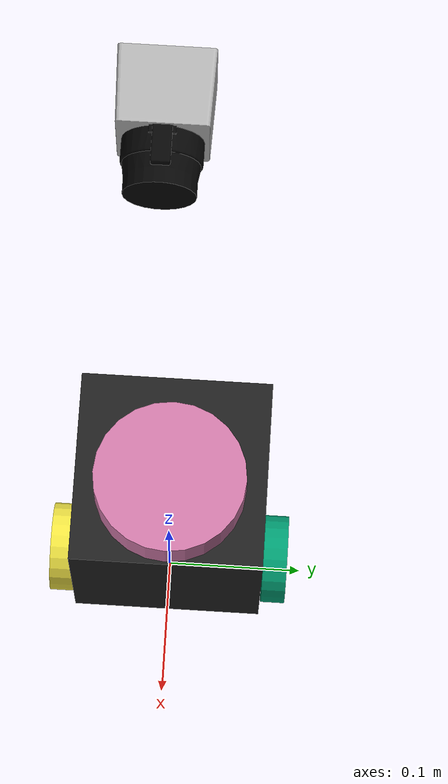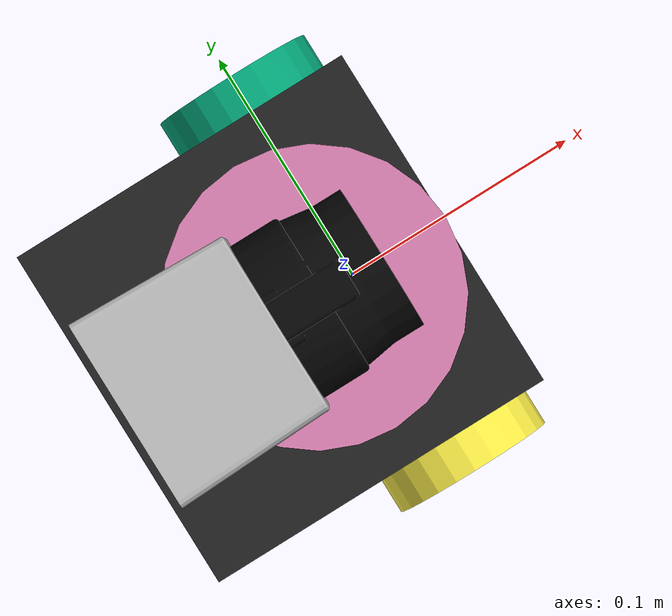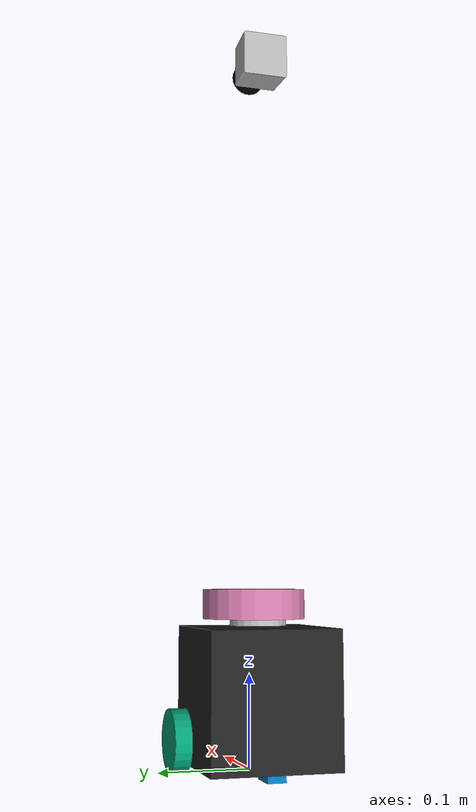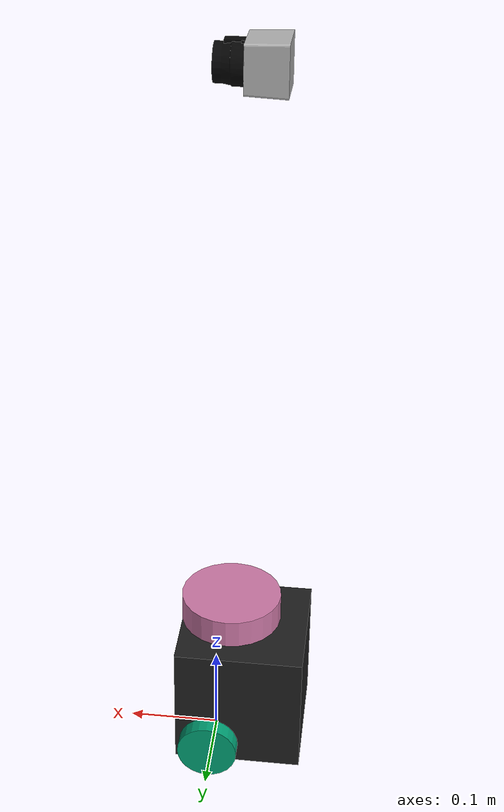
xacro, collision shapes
<?xml version="1.0" ?>
<robot name="turtlebot3_burger" xmlns:xacro="http://ros.org/wiki/xacro">
  <xacro:include filename="$(find turtlebot3_description)/urdf/common_properties.xacro"/>
  <xacro:include filename="$(find turtlebot3_description)/urdf/turtlebot3_burger.gazebo.xacro"/>

  <link name="base_footprint"/>

  <joint name="base_joint" type="fixed">
    <parent link="base_footprint"/>
    <child link="base_link"/>
    <origin xyz="0.0 0.0 0.010" rpy="0 0 0"/>
  </joint>

  <link name="base_link">
    <visual>
      <origin xyz="-0.032 0 0.0" rpy="0 0 0"/>
      <geometry>
        <mesh filename="package://turtlebot3_description/meshes/bases/burger_base.stl" scale="0.001 0.001 0.001"/>
      </geometry>
      <material name="light_black"/>
    </visual>

    <collision>
      <origin xyz="-0.032 0 0.070" rpy="0 0 0"/>
      <geometry>
        <box size="0.140 0.140 0.143"/>
      </geometry>
    </collision>

    <inertial>
      <origin xyz="0 0 0" rpy="0 0 0"/>
      <mass value="8.2573504e-01"/>
      <inertia ixx="2.2124416e-03" ixy="-1.2294101e-05" ixz="3.4938785e-05"
               iyy="2.1193702e-03" iyz="-5.0120904e-06"
               izz="2.0064271e-03" />
    </inertial>
  </link>

  <joint name="wheel_left_joint" type="continuous">
    <parent link="base_link"/>
    <child link="wheel_left_link"/>
    <origin xyz="0.0 0.08 0.023" rpy="-1.57 0 0"/>
    <axis xyz="0 0 1"/>
  </joint>

  <link name="wheel_left_link">
    <visual>
      <origin xyz="0 0 0" rpy="1.57 0 0"/>
      <geometry>
        <mesh filename="package://turtlebot3_description/meshes/wheels/left_tire.stl" scale="0.001 0.001 0.001"/>
      </geometry>
      <material name="dark"/>
    </visual>

    <collision>
      <origin xyz="0 0 0" rpy="0 0 0"/>
      <geometry>
        <cylinder length="0.018" radius="0.033"/>
      </geometry>
    </collision>

    <inertial>
      <origin xyz="0 0 0" />
      <mass value="2.8498940e-02" />
      <inertia ixx="1.1175580e-05" ixy="-4.2369783e-11" ixz="-5.9381719e-09"
               iyy="1.1192413e-05" iyz="-1.4400107e-11"
               izz="2.0712558e-05" />
      </inertial>
  </link>

  <joint name="wheel_right_joint" type="continuous">
    <parent link="base_link"/>
    <child link="wheel_right_link"/>
    <origin xyz="0.0 -0.080 0.023" rpy="-1.57 0 0"/>
    <axis xyz="0 0 1"/>
  </joint>

  <link name="wheel_right_link">
    <visual>
      <origin xyz="0 0 0" rpy="1.57 0 0"/>
      <geometry>
        <mesh filename="package://turtlebot3_description/meshes/wheels/right_tire.stl" scale="0.001 0.001 0.001"/>
      </geometry>
      <material name="dark"/>
    </visual>

    <collision>
      <origin xyz="0 0 0" rpy="0 0 0"/>
      <geometry>
        <cylinder length="0.018" radius="0.033"/>
      </geometry>
    </collision>

    <inertial>
      <origin xyz="0 0 0" />
      <mass value="2.8498940e-02" />
      <inertia ixx="1.1175580e-05" ixy="-4.2369783e-11" ixz="-5.9381719e-09"
               iyy="1.1192413e-05" iyz="-1.4400107e-11"
               izz="2.0712558e-05" />
      </inertial>
  </link>

  <joint name="caster_back_joint" type="fixed">
    <parent link="base_link"/>
    <child link="caster_back_link"/>
    <origin xyz="-0.081 0 -0.004" rpy="-1.57 0 0"/>
  </joint>

  <link name="caster_back_link">
    <collision>
      <origin xyz="0 0.001 0" rpy="0 0 0"/>
      <geometry>
        <box size="0.030 0.009 0.020"/>
      </geometry>
    </collision>

    <inertial>
      <origin xyz="0 0 0" />
      <mass value="0.005" />
      <inertia ixx="0.001" ixy="0.0" ixz="0.0"
               iyy="0.001" iyz="0.0"
               izz="0.001" />
    </inertial>
  </link>

  <joint name="imu_joint" type="fixed">
    <parent link="base_link"/>
    <child link="imu_link"/>
    <origin xyz="-0.032 0 0.068" rpy="0 0 0"/>
  </joint>

  <link name="imu_link"/>

  <joint name="scan_joint" type="fixed">
    <parent link="base_link"/>
    <child link="base_scan"/>
    <origin xyz="-0.032 0 0.172" rpy="0 0 0"/>
  </joint>

  <link name="base_scan">

    <collision>
      <origin xyz="0.015 0 -0.0065" rpy="0 0 0"/>
      <geometry>
        <cylinder length="0.0315" radius="0.055"/>
      </geometry>
    </collision>

    <inertial>
      <mass value="0.114" />
      <origin xyz="0 0 0" />
      <inertia ixx="0.001" ixy="0.0" ixz="0.0"
               iyy="0.001" iyz="0.0"
               izz="0.001" />
    </inertial>
  </link>

   <!-- plugin -->
   <gazebo>
    <plugin name="gazebo_ros_control" filename="libgazebo_ros_control.so">
    </plugin>
  </gazebo>

  <xacro:include filename="$(find logical_camera)/urdf/sensors/sensor_logical_camera.urdf.xacro"/>

    <gazebo reference="rot_laser_link">
      <sensor name="logical_camera" type="logical_camera">
        <plugin name="logical_camera_plugin" filename="liblogical_camera.so"/>
          <logical_camera>
            <near>0.001</near>
            <far>15</far>
            <horizontal_fov>${0.2*3.1415/180.0}</horizontal_fov>
            <aspect_ratio>1.0</aspect_ratio>
          </logical_camera>

          <visualize>true</visualize>
          <always_on>true</always_on>
          <update_rate>200</update_rate>
      </sensor>
    </gazebo>

  <joint name="velodyne_joint" type="fixed">
	<origin xyz="0.0 0.0 -0.025" rpy="0 0 0"/>
	<axis xyz="0 0 1"/>
	<parent link="base_scan"/>
	<child link="rot_laser_base_link"/>
  </joint>

  <link name="rot_laser_base_link">
    <inertial>
        <mass value="0.0001" />
        <inertia ixx="0.0002835" ixy="0.0" ixz="0.0" iyy="0.0002835" iyz="0.0" izz="0.000324" />
    </inertial>
    <collision>
      <geometry>
        <cylinder length="0.0075" radius="0.03"/>
      </geometry>
    </collision>
    <visual>
      <geometry>
        <cylinder length="0.0075" radius="0.03"/>
      </geometry>
    </visual>
  </link>

  <link name="rot_laser_link">
    <inertial>
        <mass value="0.0001" />
        <inertia ixx="0.0002835" ixy="0.0" ixz="0.0" iyy="0.0002835" iyz="0.0" izz="0.000324" />
    </inertial>
    <origin rpy="0.0 0.0 0.0" xyz="0.0 0.0 0.0" />
    <collision>
      <geometry>
        <mesh filename="package://rs_description/meshes/hokuyo4.dae"/>
      </geometry>
    </collision>
    <visual>
      <geometry>
        <mesh filename="package://rs_description/meshes/hokuyo4.dae"/>
      </geometry>
    </visual>
  </link>

  <!-- Rotating Laser -->
  <joint name="base_to_laser_joint" type="continuous">
    <parent link="rot_laser_base_link"/>
    <child link="rot_laser_link"/>
    <axis xyz="0 0 -1"/>
    <origin xyz="0.00 0.0 0.63" rpy="0.0 0.0 0.0"/>
  </joint>

  <!-- the transmission for the joint of the rotating laser -->
  <transmission name="base_to_laser_trans">
    <type>transmission_interface/SimpleTransmission</type>
    <actuator name="motor1">
      <mechanicalReduction>1</mechanicalReduction>
    </actuator>
    <joint name="base_to_laser_joint">
      <hardwareInterface>hardware_interface/EffortJointInterface</hardwareInterface>
    </joint>
  </transmission>

  <gazebo reference="rot_laser_link">
    <sensor type="ray" name="head_hokuyo_sensor">
        <pose>0 0 0 0 0 0</pose>
        <visualize>true</visualize>
        <update_rate>420</update_rate>
        <ray>
            <scan>
                <horizontal>
                    <samples>1</samples>
                    <resolution>1</resolution>
                    <min_angle>-0.00110001</min_angle>
                    <max_angle>0.00100001</max_angle>
                </horizontal>
                <vertical>
                    <samples>1</samples>
                    <resolution>1</resolution>
                    <min_angle>0</min_angle>
                    <max_angle>0</max_angle>
                </vertical>
            </scan>
            <range>
                <min>0.10</min>
                <max>10.0</max>
                <resolution>0.01</resolution>
            </range>
            <noise>
                <type>gaussian</type>
                <mean>0.0</mean>
                <stddev>0.01</stddev>
            </noise>
      </ray>

        <plugin name="gazebo_ros_head_hokuyo_controller" filename="libgazebo_ros_laser.so">
          <topicName>/rot_laser_scan</topicName>
          <frameName>rot_laser_link</frameName>
        </plugin>

    </sensor>
  </gazebo>

</robot>
